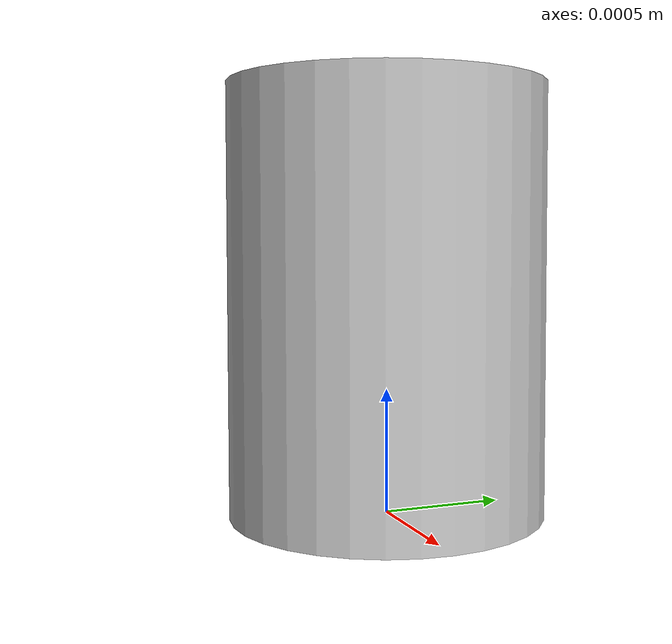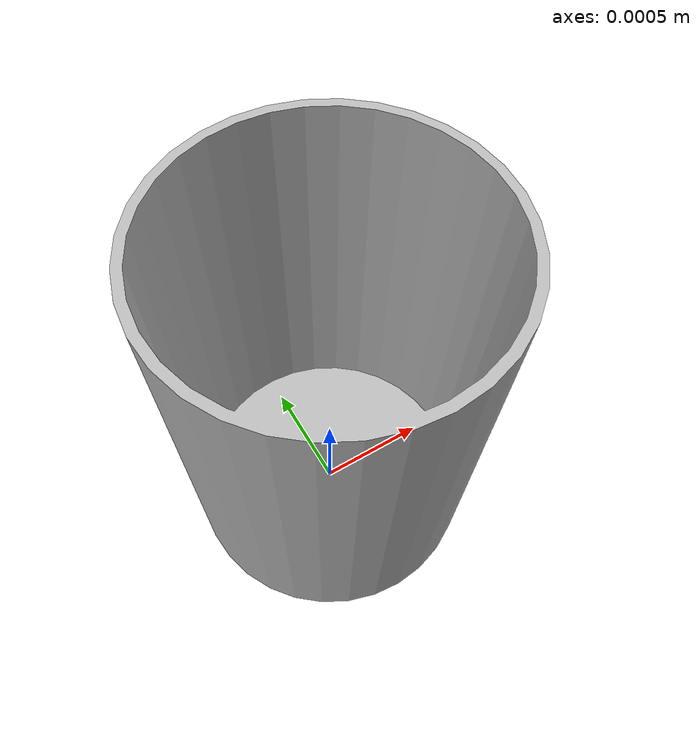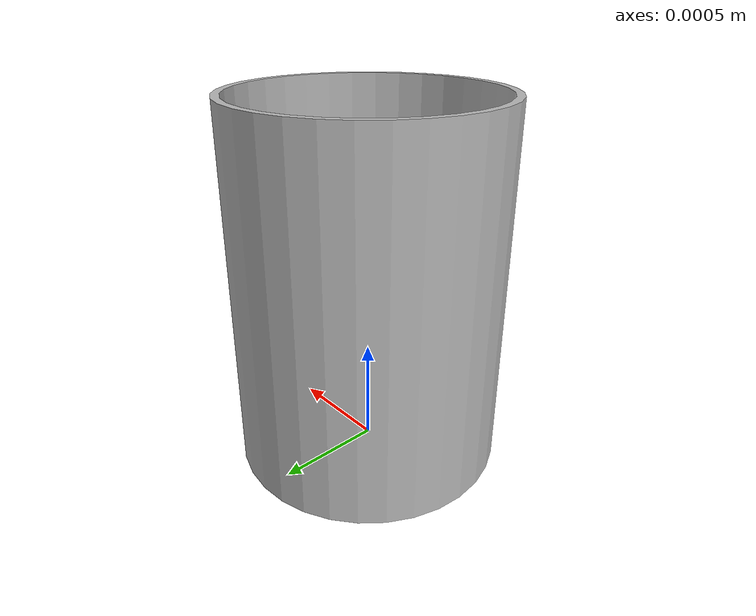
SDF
<?xml version='1.0' encoding='utf-8'?>
<sdf version="1.8">
  <model name="beaker">
    <static>true</static>
    <link name="link">
      <collision name="collision">
        <geometry><mesh><uri>meshes/beaker.obj</uri><scale>0.018 0.018 0.018</scale></mesh></geometry>
      </collision>
      <visual name="visual">
        <geometry><mesh><uri>meshes/beaker.obj</uri><scale>0.018 0.018 0.018</scale></mesh></geometry>
      </visual>
    </link>
  </model>
</sdf>
